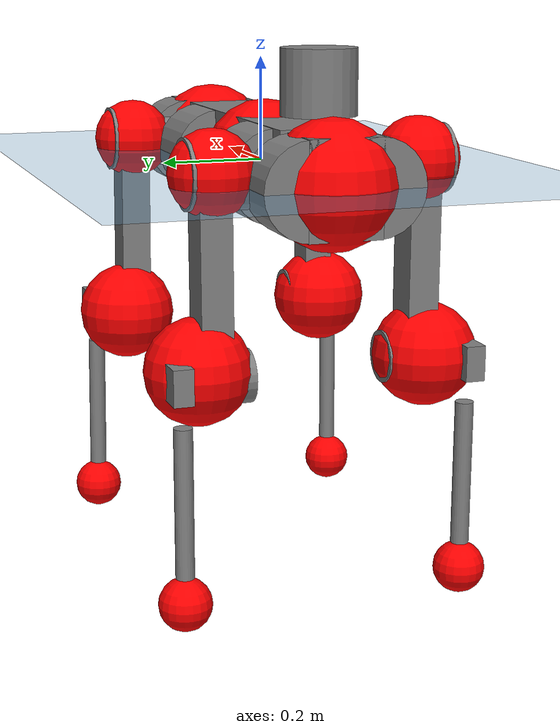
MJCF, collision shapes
<mujoco model="anymal_c">
  <compiler angle="radian" assetdir="assets" balanceinertia="true" inertiafromgeom="false"/>

  <option timestep="0.005" density="1.2" viscosity="2e-05"/>

  <size nkey="1"/>

  <visual>
    <quality shadowsize="8192"/>
    <map shadowclip="0.5"/>
  </visual>

  <default>
    <default class="/">
      <material specular="0" shininess="0.25"/>
      <geom contype="0" conaffinity="0" group="1" solref="-1000 -80"/>
      <site size="0.01 0.005 0.005" group="5"/>
      <general forcelimited="true" forcerange="-80 80" biastype="affine" gainprm="80" biasprm="0 -80 -2"/>
      <default class="anymal_c">
        <joint armature="0.01" damping="0.01" frictionloss="0.1"/>
        <default class="visual">
          <geom type="mesh" group="2"/>
          <default class="visual_zflip"/>
        </default>
        <default class="collision">
          <geom type="cylinder" group="3"/>
          <default class="foot">
            <geom size="0.03 0 0" type="sphere" condim="6" priority="1" friction="0.8 0.02 0.01" solimp="0.015 1 0.03"/>
          </default>
        </default>
      </default>
      <default class="reward_collision_sphere">
        <geom group="5" rgba="1 0 0 1"/>
      </default>
    </default>
  </default>

  <asset>
    <texture type="skybox" colorspace="auto" name="//unnamed_texture_0" builtin="gradient" rgb1="0.95 0.95 0.95" rgb2="0.95 0.95 0.95" width="100" height="600"/>
    <texture type="2d" colorspace="auto" name="texplane" builtin="checker" rgb1="0.345 0.575 0.748" rgb2="0.345 0.575 0.748" markrgb="1 1 1" width="512" height="512"/>
    <texture type="2d" colorspace="linear" name="base" file="base.png"/>
    <texture type="2d" colorspace="linear" name="top_shell" file="top_shell.png"/>
    <texture type="2d" colorspace="linear" name="bottom_shell" file="bottom_shell.png"/>
    <texture type="2d" colorspace="linear" name="remote" file="remote.png"/>
    <texture type="2d" colorspace="linear" name="hatch" file="hatch.png"/>
    <texture type="2d" colorspace="linear" name="handle" file="handle.png"/>
    <texture type="2d" colorspace="linear" name="face" file="face.png"/>
    <texture type="2d" colorspace="linear" name="battery" file="battery.png"/>
    <texture type="2d" colorspace="linear" name="lidar_cage" file="lidar_cage.png"/>
    <texture type="2d" colorspace="linear" name="depth_camera" file="depth_camera.png"/>
    <texture type="2d" colorspace="linear" name="wide_angle_camera" file="wide_angle_camera.png"/>
    <texture type="2d" colorspace="linear" name="lidar" file="lidar.png"/>
    <texture type="2d" colorspace="linear" name="drive" file="drive.png"/>
    <texture type="2d" colorspace="linear" name="hip_l" file="hip_l.png"/>
    <texture type="2d" colorspace="linear" name="shank_l" file="shank_l.png"/>
    <texture type="2d" colorspace="linear" name="foot" file="foot.png"/>
    <texture type="2d" colorspace="linear" name="thigh" file="thigh.png"/>
    <texture type="2d" colorspace="linear" name="shank_r" file="shank_r.png"/>
    <texture type="2d" colorspace="linear" name="hip_r" file="hip_r.png"/>
    <material name="MatPlane" class="/" texture="texplane" texuniform="true" texrepeat="2 2" specular="0.9" shininess="0.5"/>
    <material name="black_plastic" class="/" rgba="0.007 0.007 0.007 1"/>
    <material name="green" class="/" rgba="0.052 0.178 0.033 1"/>
    <material name="red" class="/" rgba="0.178 0.006 0.005 1"/>
    <material name="yellow" class="/" rgba="0.178 0.119 0.006 1"/>
    <material name="lwl" class="/" rgba="0.8 0.8 0.8 1"/>
    <material name="base" class="/" texture="base"/>
    <material name="top_shell" class="/" texture="top_shell"/>
    <material name="bottom_shell" class="/" texture="bottom_shell"/>
    <material name="hip_l" class="/" texture="hip_l"/>
    <material name="thigh" class="/" texture="thigh"/>
    <material name="shank_l" class="/" texture="shank_l"/>
    <material name="foot" class="/" texture="foot"/>
    <material name="hip_r" class="/" texture="hip_r"/>
    <material name="shank" class="/" texture="shank_r"/>
    <material name="hatch" class="/" texture="hatch"/>
    <material name="remote" class="/" texture="remote"/>
    <material name="handle" class="/" texture="handle"/>
    <material name="face" class="/" texture="face"/>
    <material name="depth_camera" class="/" texture="depth_camera"/>
    <material name="wide_angle_camera" class="/" texture="wide_angle_camera"/>
    <material name="battery" class="/" texture="battery"/>
    <material name="lidar_cage" class="/" texture="lidar_cage"/>
    <material name="lidar" class="/" texture="lidar"/>
    <material name="drive" class="/" texture="drive"/>
    <mesh name="base_0" class="/" file="base_0.obj"/>
    <mesh name="base_1" class="/" file="base_1.obj"/>
    <mesh name="base_2" class="/" file="base_2.obj"/>
    <mesh name="base_3" class="/" file="base_3.obj"/>
    <mesh name="base_4" class="/" file="base_4.obj"/>
    <mesh name="base_5" class="/" file="base_5.obj"/>
    <mesh name="top_shell" class="/" file="top_shell.obj"/>
    <mesh name="bottom_shell" class="/" file="bottom_shell.obj"/>
    <mesh name="remote" class="/" file="remote.obj"/>
    <mesh name="handle" class="/" file="handle.obj"/>
    <mesh name="face" class="/" file="face.obj"/>
    <mesh name="wide_angle_camera" class="/" file="wide_angle_camera.obj"/>
    <mesh name="depth_camera" class="/" file="depth_camera.obj"/>
    <mesh name="battery" class="/" file="battery.obj"/>
    <mesh name="lidar_cage" class="/" file="lidar_cage.obj"/>
    <mesh name="lidar" class="/" file="lidar.obj"/>
    <mesh name="drive" class="/" file="drive.obj"/>
    <mesh name="hip_l" class="/" file="hip_l.obj"/>
    <mesh name="thigh" class="/" file="thigh.obj"/>
    <mesh name="shank_l" class="/" file="shank_l.obj"/>
    <mesh name="foot" class="/" file="foot.obj"/>
    <mesh name="hip_r" class="/" file="hip_r.obj"/>
    <mesh name="hatch" class="/" file="hatch.obj"/>
    <mesh name="shank_r" class="/" file="shank_r.obj"/>
  </asset>

  <worldbody>
    <geom name="floor" class="/" size="100 100 0.125" type="plane" group="0" material="MatPlane"/>
    <light name="toplight_shadow" class="/" pos="0 0 5" dir="0.0990148 0.0990148 -0.990148" type="directional" ambient="0.04 0.04 0.04" diffuse="0.55 0.55 0.55" specular="0.12 0.12 0.12"/>
    <light name="toplight_fill" class="/" pos="0 0 5" dir="0.0990148 0.0990148 -0.990148" type="directional" castshadow="false" ambient="0.04 0.04 0.04" diffuse="0.3 0.3 0.3" specular="0.08 0.08 0.08"/>
    <body name="trunk" childclass="anymal_c" pos="-0.0115934 -0.00488509 0.000128851" quat="0.999999 -0.000504479 6.15624e-05 -0.00132295">
      <inertial pos="0.00171591 -6.71268e-06 0.0621442" quat="0.512829 0.474077 0.495646 0.516327" mass="19.0971" diaginertia="0.168641 0.244368 0.799484"/>
      <joint name="//unnamed_joint_0" type="free" armature="0" damping="0" frictionloss="0"/>
      <geom name="//unnamed_geom_1" class="visual" material="green" mesh="base_0"/>
      <geom name="//unnamed_geom_2" class="visual" material="yellow" mesh="base_1"/>
      <geom name="//unnamed_geom_3" class="visual" material="red" mesh="base_2"/>
      <geom name="//unnamed_geom_4" class="visual" material="black_plastic" mesh="base_3"/>
      <geom name="//unnamed_geom_5" class="visual" material="lwl" mesh="base_4"/>
      <geom name="//unnamed_geom_6" class="visual" material="base" mesh="base_5"/>
      <geom name="trunk_1" class="collision" size="0.288971 0.0697516 0.0896807" type="box"/>
      <geom name="trunk_2" class="collision" size="0.0896807 0.0722428" pos="0.176872 0.0609415 0" quat="0.707107 0 0.707107 0"/>
      <geom name="trunk_3" class="collision" size="0.0896807 0.0722428" pos="-0.176872 0.0609415 0" quat="0.707107 0 0.707107 0"/>
      <geom name="trunk_4" class="collision" size="0.0896807 0.0722428" pos="0.176872 -0.0609415 0" quat="0.707107 0 0.707107 0"/>
      <geom name="trunk_5" class="collision" size="0.0896807 0.0722428" pos="-0.176872 -0.0609415 0" quat="0.707107 0 0.707107 0"/>
      <geom name="//unnamed_geom_12" class="visual" material="top_shell" mesh="top_shell"/>
      <geom name="//unnamed_geom_13" class="visual" material="bottom_shell" mesh="bottom_shell"/>
      <geom name="//unnamed_geom_14" class="visual" material="remote" mesh="remote"/>
      <geom name="//unnamed_geom_15" class="visual" material="handle" mesh="handle"/>
      <geom name="//unnamed_geom_16" class="visual" pos="0.337073 0 0" quat="1 0 0 0" material="face" mesh="face"/>
      <geom name="trunk_6" class="collision" size="0.0548048 0.0697516 0.0896807" pos="0.381799 0 0" type="box"/>
      <geom name="//unnamed_geom_18" class="collision" size="0.0896807 0.0548048" pos="0.381799 0.0609415 0" quat="0.707107 0 0.707107 0"/>
      <geom name="//unnamed_geom_19" class="collision" size="0.0896807 0.0548048" pos="0.381799 -0.0609415 0" quat="0.707107 0 0.707107 0"/>
      <geom name="//unnamed_geom_20" class="visual" pos="0.375436 0 -0.0418642" quat="0.965926 0 0.258819 0" material="depth_camera" mesh="depth_camera"/>
      <geom name="//unnamed_geom_21" class="visual" pos="0.417173 0 0.0195442" material="wide_angle_camera" mesh="wide_angle_camera"/>
      <geom name="//unnamed_geom_22" class="visual_zflip" pos="-0.337073 0 0" quat="0 0 0 1" material="face" mesh="face"/>
      <geom name="trunk_7" class="collision" size="0.0548048 0.0697516 0.0896807" pos="-0.381799 0 0" quat="0 0 0 1" type="box"/>
      <geom name="//unnamed_geom_24" class="collision" size="0.0896807 0.0548048" pos="-0.381799 -0.0609415 0" quat="0 -0.707107 0 0.707107"/>
      <geom name="//unnamed_geom_25" class="collision" size="0.0896807 0.0548048" pos="-0.381799 0.0609415 0" quat="0 -0.707107 0 0.707107"/>
      <geom name="//unnamed_geom_26" class="visual" pos="-0.375436 0 -0.0418642" quat="0 -0.258819 0 0.965926" material="depth_camera" mesh="depth_camera"/>
      <geom name="//unnamed_geom_27" class="visual_zflip" pos="-0.417173 0 0.0195442" quat="0 0 0 1" material="wide_angle_camera" mesh="wide_angle_camera"/>
      <geom name="//unnamed_geom_28" class="visual" material="battery" mesh="battery"/>
      <geom name="//unnamed_geom_29" class="visual" pos="0 0.0673391 0.0341846" quat="0.683013 -0.183013 0.183013 0.683013" material="depth_camera" mesh="depth_camera"/>
      <geom name="//unnamed_geom_30" class="visual" pos="0 -0.0673391 0.0341846" quat="0.683013 0.183013 0.183013 -0.683013" material="depth_camera" mesh="depth_camera"/>
      <geom name="//unnamed_geom_31" class="visual" pos="-0.296006 0 0.0959586" quat="1 0 0 0" material="lidar_cage" mesh="lidar_cage"/>
      <geom name="trunk_8" class="collision" size="0.0697516 0.0597871" pos="-0.296006 0 0.174292"/>
      <geom name="//unnamed_geom_33" class="visual" pos="-0.296006 2.25472e-05 0.18565" quat="0.707107 0 0 -0.707107" material="lidar" mesh="lidar"/>
      <geom name="//unnamed_geom_34" class="visual" pos="0.24388 0.0906962 -7.5032e-09" quat="0.258819 0.965926 0 0" material="drive" mesh="drive"/>
      <geom name="//unnamed_geom_35" class="visual" pos="0.24388 -0.0906962 7.5032e-09" quat="0.258819 -0.965926 0 0" material="drive" mesh="drive"/>
      <geom name="//unnamed_geom_36" class="visual" pos="-0.24388 0.0906962 7.5032e-09" quat="0 0 0.965926 -0.258819" material="drive" mesh="drive"/>
      <geom name="//unnamed_geom_37" class="visual" pos="-0.24388 -0.0906962 -7.5032e-09" quat="0 0 -0.965926 -0.258819" material="drive" mesh="drive"/>
      <geom name="//unnamed_geom_38" class="visual" pos="0.0943315 0 0.0953058" quat="1 0 0 0" material="hatch" mesh="hatch"/>
      <geom name="//unnamed_geom_39" class="reward_collision_sphere" size="0.119574"/>
      <geom name="//unnamed_geom_40" class="reward_collision_sphere" size="0.119574" pos="0.365941 0 0"/>
      <geom name="//unnamed_geom_41" class="reward_collision_sphere" size="0.119574" pos="-0.365941 0 0"/>
      <site name="imu" pos="0.185855 0.0134459 0.125933" size="0.00996452"/>
      <camera name="track" pos="0 -1.74119 0" quat="0.707107 0.707107 0 0" mode="trackcom"/>
      <camera name="ego_camera" pos="0.365941 0 -0.0522224" quat="-0.5 -0.5 0.5 0.5"/>
      <body name="LF_HIP" pos="0.2441 0.0930711 0.00724067" quat="0.255972 0.966674 -0.000762687 -0.00439665">
        <inertial pos="0.0586062 -0.00821301 -0.0119117" quat="-0.133244 0.707281 -0.137593 0.680491" mass="2.81621" diaginertia="0.00212877 0.00271817 0.0125479"/>
        <joint name="LF_HAA" pos="0 0 0" axis="0.997385 -0.0721871 -0.00357988" stiffness="0.0585171" range="-0.716103 0.482457" armature="0.0160848" damping="0" frictionloss="0.0690794"/>
        <geom name="//unnamed_geom_42" class="visual" pos="0 -0.00044138 7.24962e-05" quat="0.258819 -0.965926 0 0" material="hip_l" mesh="hip_l"/>
        <geom name="//unnamed_geom_43" class="visual" pos="0.0487109 -0.0599337 -0.03782" quat="0.183013 -0.683013 0.683013 0.183013" material="drive" mesh="drive"/>
        <geom name="//unnamed_geom_44" class="collision" size="0.0498226 0.0697516" pos="0.0487109 -0.0104121 -0.00901489" quat="-0.353553 -0.612372 0.612372 -0.353553"/>
        <body name="LF_THIGH" pos="0.0567253 -0.0640183 -0.0478909" quat="0.184213 -0.682709 0.682368 0.185332">
          <inertial pos="0.025147 0.000330915 -0.307148" quat="0.995789 -0.017412 -0.0636362 0.0636472" mass="3.21057" diaginertia="0.0114324 0.0158097 0.016557"/>
          <joint name="LF_HFE" pos="0 0 0" axis="0.999445 -0.0332575 -0.00172335" stiffness="0.0385083" range="-3.24684 3.14384" armature="0.00422318" damping="0.0399644" frictionloss="0.135447"/>
          <geom name="//unnamed_geom_45" class="visual" pos="-0.00114185 -1.79928e-06 0" quat="0.707107 0 0 -0.707107" material="thigh" mesh="thigh"/>
          <geom name="//unnamed_geom_46" class="collision" size="0.0647694 0.0398581" pos="0.0325281 0 0" quat="0.5 0.5 -0.5 -0.5"/>
          <geom name="//unnamed_geom_47" class="collision" size="0.0373669 0.0298936 0.140813" pos="0.0243961 0 -0.184494" quat="0.707107 0 0 -0.707107" type="box"/>
          <geom name="//unnamed_geom_48" class="visual" pos="0.0815643 0 -0.372084" quat="1 0 0 0" material="drive" mesh="drive"/>
          <geom name="//unnamed_geom_49" class="collision" size="0.0498226 0.0697516" pos="0.02464 0 -0.372084" quat="0.707107 0 0.707107 0"/>
          <geom name="//unnamed_geom_50" class="reward_collision_sphere" size="0.0797161" pos="0.0203301 0 0"/>
          <body name="LF_SHANK" pos="0.0826075 0.0139988 -0.369109" quat="0.99999 -0.00292939 -0.00139261 -0.0030667">
            <inertial pos="-0.00155913 -0.0506355 -0.10637" quat="0.986127 -0.164146 -0.0239543 0.00603939" mass="0.47743" diaginertia="0.0036638 0.00425159 0.00436099"/>
            <joint name="LF_KFE" pos="0 0 0" axis="0.99977 0.0202998 -0.00691134" range="-3.11823 3.17063" armature="0.0100734" damping="0.0487439" frictionloss="0.0969144"/>
            <geom name="//unnamed_geom_51" class="visual" pos="-0.000372331 -0.00198529 0" quat="0.707107 0 0 -0.707107" material="shank_l" mesh="shank_l"/>
            <geom name="LF_kfe_act" class="collision" size="0.0597871 0.019929" pos="0.0162641 0 0" quat="0.5 0.5 -0.5 -0.5"/>
            <geom name="//unnamed_geom_53" class="collision" size="0.057295 0.0336302 0.0189326" pos="0.0162641 -0.0500583 0" quat="0.5 0.5 -0.5 -0.5" type="box"/>
            <geom name="//unnamed_geom_54" class="visual" pos="0.0106124 -0.0772085 -0.44124" quat="0.382683 0 0 -0.92388" material="foot" mesh="foot"/>
            <geom name="LF_calf" class="collision" size="0.0174379 0.140751" pos="0.0106123 -0.0765687 -0.22062" quat="0.707107 0 0 -0.707107"/>
            <geom name="LF_foot" class="foot" size="0.0199682" pos="0.0106123 -0.0765687 -0.411865" quat="0.707107 0 0 -0.707107"/>
            <geom name="//unnamed_geom_57" class="reward_collision_sphere" size="0.0996452" pos="-0.0406601 0 0"/>
            <geom name="//unnamed_geom_58" class="reward_collision_sphere" size="0.0498226" pos="0.0106123 -0.0765687 -0.411865"/>
            <site name="LF_foot" class="foot" pos="0.0106123 -0.0765687 -0.411865" quat="0.707107 0 0 -0.707107" size="0.00996452"/>
          </body>
        </body>
      </body>
      <body name="RF_HIP" pos="0.257623 -0.103807 0.0103429" quat="0.258801 -0.965931 -0.000164204 0.000179218">
        <inertial pos="0.0328071 0.0100681 0.00129031" quat="0.134939 0.674427 0.0913105 0.72014" mass="2.27138" diaginertia="0.00174711 0.00227871 0.0104047"/>
        <joint name="RF_HAA" pos="0 0 0" axis="0.998387 -0.0209642 0.0527675" range="-0.243182 0.698726" armature="0.0109861" damping="0.00620386" frictionloss="0.152675"/>
        <geom name="//unnamed_geom_59" class="visual" pos="0 0.000441376 7.2496e-05" quat="0.258819 0.965926 0 0" material="hip_r" mesh="hip_r"/>
        <geom name="//unnamed_geom_60" class="visual" pos="0.0487109 0.0599337 -0.03782" quat="0.183013 0.683013 0.683013 -0.183013" material="drive" mesh="drive"/>
        <geom name="//unnamed_geom_61" class="collision" size="0.0498226 0.0697516" pos="0.0487109 0.0104121 -0.00901489" quat="-0.353553 0.612372 0.612372 0.353553"/>
        <body name="RF_THIGH" pos="0.048389 0.0668032 -0.0620454" quat="0.182207 0.682957 0.683581 -0.181898">
          <inertial pos="0.0315065 -0.0144774 -0.324016" quat="0.993313 -0.00362797 -0.0765498 0.0863463" mass="2.89619" diaginertia="0.0105676 0.0138997 0.0150636"/>
          <joint name="RF_HFE" pos="0 0 0" axis="0.999466 0.00308523 0.0325431" range="-3.12015 3.01385" armature="0.0118299" damping="0.050721" frictionloss="0.0892305"/>
          <geom name="//unnamed_geom_62" class="visual" pos="-0.00114185 -1.79928e-06 0" quat="0.707107 0 0 -0.707107" material="thigh" mesh="thigh"/>
          <geom name="//unnamed_geom_63" class="collision" size="0.0647694 0.0398581" pos="0.0325281 0 0" quat="0.5 0.5 0.5 0.5"/>
          <geom name="//unnamed_geom_64" class="collision" size="0.0373669 0.0298936 0.140813" pos="0.0243961 0 -0.184494" quat="0.707107 0 0 0.707107" type="box"/>
          <geom name="//unnamed_geom_65" class="visual" pos="0.0815643 0 -0.372084" quat="1 0 0 0" material="drive" mesh="drive"/>
          <geom name="//unnamed_geom_66" class="collision" size="0.0498226 0.0697516" pos="0.02464 0 -0.372084" quat="0.707107 0 0.707107 0"/>
          <geom name="//unnamed_geom_67" class="reward_collision_sphere" size="0.0797161" pos="0.0203301 0 0"/>
          <body name="RF_SHANK" pos="0.0786885 -0.00351421 -0.38291" quat="0.999977 -0.00646273 -0.000223941 -0.00185443">
            <inertial pos="-0.0101963 0.0614775 -0.115929" quat="0.993054 0.114791 -0.0103344 0.0236553" mass="0.67213" diaginertia="0.00338584 0.00405777 0.00359462"/>
            <joint name="RF_KFE" pos="0 0 0" axis="0.999834 -0.00165515 -0.0181453" range="-2.88735 3.1403" armature="0.0092715" damping="0" frictionloss="0.0430318"/>
            <geom name="//unnamed_geom_68" class="visual" pos="-0.000372329 0.00198528 0" quat="0.707107 0 0 0.707107" material="shank" mesh="shank_r"/>
            <geom name="RF_kfe_act" class="collision" size="0.0597871 0.019929" pos="0.0162641 0 0" quat="0.5 0.5 0.5 0.5"/>
            <geom name="//unnamed_geom_70" class="collision" size="0.057295 0.0336302 0.0189326" pos="0.0162641 0.0500583 0" quat="0.5 0.5 0.5 0.5" type="box"/>
            <geom name="//unnamed_geom_71" class="visual" pos="0.0106122 0.0772085 -0.44124" quat="0.382683 0 0 0.92388" material="foot" mesh="foot"/>
            <geom name="RF_calf" class="collision" size="0.0174379 0.140751" pos="0.0106123 0.0765687 -0.22062" quat="0.707107 0 0 0.707107"/>
            <geom name="RF_foot" class="foot" size="0.032101" pos="0.0106123 0.0765687 -0.411865" quat="0.707107 0 0 0.707107"/>
            <geom name="//unnamed_geom_74" class="reward_collision_sphere" size="0.0996452" pos="-0.0406601 0 0"/>
            <geom name="//unnamed_geom_75" class="reward_collision_sphere" size="0.0498226" pos="0.0106123 0.0765687 -0.411865"/>
            <site name="RF_foot" class="foot" pos="0.0106123 0.0765687 -0.411865" quat="0.707107 0 0 0.707107" size="0.00996452"/>
          </body>
        </body>
      </body>
      <body name="LH_HIP" pos="-0.25877 0.101843 0.00267719" quat="0.000653232 -0.000515615 0.965515 -0.260348">
        <inertial pos="0.033423 0.0276194 -0.00948239" quat="0.102653 0.652531 0.15549 0.734499" mass="2.91321" diaginertia="0.00213187 0.00245169 0.0139607"/>
        <joint name="LH_HAA" pos="0 0 0" axis="0.999612 0.0275924 -0.00380206" range="-0.664052 0.624057" armature="0.00973586" damping="0.00749865" frictionloss="0.121007"/>
        <geom name="//unnamed_geom_76" class="visual" pos="0 0.000441376 7.2496e-05" quat="-0.258819 -0.965926 0 0" material="hip_r" mesh="hip_r"/>
        <geom name="//unnamed_geom_77" class="visual" pos="0.0487109 0.0599337 -0.03782" quat="0.183013 0.683013 0.683013 -0.183013" material="drive" mesh="drive"/>
        <geom name="//unnamed_geom_78" class="collision" size="0.0498226 0.0697516" pos="0.0487109 0.0104121 -0.00901489" quat="-0.353553 0.612372 0.612372 0.353553"/>
        <body name="LH_THIGH" pos="0.0418151 0.0582699 -0.0552824" quat="0.182573 0.684301 0.682299 -0.181297">
          <inertial pos="0.0226585 -0.0130362 -0.320506" quat="0.990583 0.0128765 -0.119455 0.0656581" mass="2.61364" diaginertia="0.0105505 0.0132718 0.0165369"/>
          <joint name="LH_HFE" pos="0 0 0" axis="0.998201 -0.0588622 -0.0114071" stiffness="0.0452138" range="-3.31366 2.98216" armature="0.00408852" damping="0" frictionloss="0.0461607"/>
          <geom name="//unnamed_geom_79" class="visual" pos="-0.00114185 -1.79928e-06 0" quat="0.707107 0 0 -0.707107" material="thigh" mesh="thigh"/>
          <geom name="//unnamed_geom_80" class="collision" size="0.0647694 0.0398581" pos="0.0325281 0 0" quat="0.5 0.5 -0.5 -0.5"/>
          <geom name="//unnamed_geom_81" class="collision" size="0.0373669 0.0298936 0.140813" pos="0.0243961 0 -0.184494" quat="0.707107 0 0 -0.707107" type="box"/>
          <geom name="//unnamed_geom_82" class="visual" pos="0.0815643 0 -0.372084" quat="1 0 0 0" material="drive" mesh="drive"/>
          <geom name="//unnamed_geom_83" class="collision" size="0.0498226 0.0697516" pos="0.02464 0 -0.372084" quat="0.707107 0 0.707107 0"/>
          <geom name="//unnamed_geom_84" class="reward_collision_sphere" size="0.0797161" pos="0.0203301 0 0"/>
          <body name="LH_SHANK" pos="0.089333 -0.0104019 -0.35828" quat="0.999976 0.00562205 -0.00411014 -0.000295999">
            <inertial pos="0.00384435 0.0535269 -0.120063" quat="0.994361 0.101472 -0.0285686 0.0115578" mass="0.679989" diaginertia="0.00363494 0.00502718 0.00435271"/>
            <joint name="LH_KFE" pos="0 0 0" axis="0.9997 0.0147717 0.0195532" stiffness="0.0289508" range="-3.19733 3.29948" armature="0.00860518" damping="0.0186877" frictionloss="0.14873"/>
            <geom name="//unnamed_geom_85" class="visual" pos="-0.000372329 0.00198528 0" quat="-0.707107 0 0 -0.707107" material="shank" mesh="shank_r"/>
            <geom name="LH_kfe_act" class="collision" size="0.0597871 0.019929" pos="0.0162641 0 0" quat="0.5 0.5 -0.5 -0.5"/>
            <geom name="//unnamed_geom_87" class="collision" size="0.057295 0.0336302 0.0189326" pos="0.0162641 0.0500583 0" quat="0.5 0.5 -0.5 -0.5" type="box"/>
            <geom name="//unnamed_geom_88" class="visual" pos="0.0106122 0.0772085 -0.44124" quat="-0.382683 0 0 -0.92388" material="foot" mesh="foot"/>
            <geom name="LH_calf" class="collision" size="0.0174379 0.140751" pos="0.0106123 0.0765687 -0.22062" quat="0.707107 0 0 -0.707107"/>
            <geom name="LH_foot" class="foot" size="0.0414389" pos="0.0106123 0.0765687 -0.411865" quat="0.707107 0 0 -0.707107"/>
            <geom name="//unnamed_geom_91" class="reward_collision_sphere" size="0.0996452" pos="-0.0406601 0 0"/>
            <geom name="//unnamed_geom_92" class="reward_collision_sphere" size="0.0498226" pos="0.0106123 0.0765687 -0.411865"/>
            <site name="LH_foot" class="foot" pos="0.0106123 0.0765687 -0.411865" quat="0.707107 0 0 -0.707107" size="0.00996452"/>
          </body>
        </body>
      </body>
      <body name="RH_HIP" pos="-0.231089 -0.0959094 0.000756974" quat="-0.00103716 0.00121502 -0.965538 -0.260259">
        <inertial pos="0.0369454 -0.019985 -0.00993186" quat="-0.0807925 0.68327 -0.129102 0.714106" mass="2.82931" diaginertia="0.00194085 0.00226153 0.0115352"/>
        <joint name="RH_HAA" pos="0 0 0" axis="0.997775 0.0664433 -0.0054595" stiffness="0.00783861" range="-0.705292 0.409965" armature="0.0125872" damping="0" frictionloss="0.104058"/>
        <geom name="//unnamed_geom_93" class="visual" pos="0 -0.00044138 7.24962e-05" quat="-0.258819 0.965926 0 0" material="hip_l" mesh="hip_l"/>
        <geom name="//unnamed_geom_94" class="visual" pos="0.0487109 -0.0599337 -0.03782" quat="-0.183013 0.683013 -0.683013 -0.183013" material="drive" mesh="drive"/>
        <geom name="//unnamed_geom_95" class="collision" size="0.0498226 0.0697516" pos="0.0487109 -0.0104121 -0.00901489" quat="0.353553 0.612372 -0.612372 0.353553"/>
        <body name="RH_THIGH" pos="0.0479399 -0.0602379 -0.0662675" quat="-0.184354 0.684158 -0.681757 -0.182067">
          <inertial pos="0.0220476 -0.000137549 -0.324451" quat="0.994259 -0.0628281 -0.0409563 0.0763143" mass="3.19099" diaginertia="0.0108471 0.0131613 0.0132286"/>
          <joint name="RH_HFE" pos="0 0 0" axis="0.99987 0.00724163 0.0144156" stiffness="0.0446332" range="-3.11924 3.0523" armature="0.00517222" damping="0.0606694" frictionloss="0.130896"/>
          <geom name="//unnamed_geom_96" class="visual" pos="-0.00114185 -1.79928e-06 0" quat="0.707107 0 0 -0.707107" material="thigh" mesh="thigh"/>
          <geom name="//unnamed_geom_97" class="collision" size="0.0647694 0.0398581" pos="0.0325281 0 0" quat="0.5 0.5 0.5 0.5"/>
          <geom name="//unnamed_geom_98" class="collision" size="0.0373669 0.0298936 0.140813" pos="0.0243961 0 -0.184494" quat="0.707107 0 0 0.707107" type="box"/>
          <geom name="//unnamed_geom_99" class="visual" pos="0.0815643 0 -0.372084" quat="1 0 0 0" material="drive" mesh="drive"/>
          <geom name="//unnamed_geom_100" class="collision" size="0.0498226 0.0697516" pos="0.02464 0 -0.372084" quat="0.707107 0 0.707107 0"/>
          <geom name="//unnamed_geom_101" class="reward_collision_sphere" size="0.0797161" pos="0.0203301 0 0"/>
          <body name="RH_SHANK" pos="0.0845234 -0.00111343 -0.371863" quat="1 -4.03724e-05 0.000282621 -8.20179e-05">
            <inertial pos="0.0158664 -0.0398184 -0.117964" quat="0.992931 -0.115981 -0.000710016 -0.0252351" mass="0.50753" diaginertia="0.00402125 0.00400982 0.0043377"/>
            <joint name="RH_KFE" pos="0 0 0" axis="0.999825 -0.0116595 0.0146524" stiffness="0.00739764" range="-3.05068 2.88629" armature="0.0103393" damping="0" frictionloss="0.0352188"/>
            <geom name="//unnamed_geom_102" class="visual" pos="-0.000372331 -0.00198529 0" quat="0.707107 0 0 -0.707107" material="shank_l" mesh="shank_l"/>
            <geom name="RH_kfe_act" class="collision" size="0.0597871 0.019929" pos="0.0162641 0 0" quat="0.5 0.5 0.5 0.5"/>
            <geom name="//unnamed_geom_104" class="collision" size="0.057295 0.0336302 0.0189326" pos="0.0162641 -0.0500583 0" quat="0.5 0.5 0.5 0.5" type="box"/>
            <geom name="//unnamed_geom_105" class="visual" pos="0.0106124 -0.0772085 -0.44124" quat="0.382683 0 0 -0.92388" material="foot" mesh="foot"/>
            <geom name="RH_calf" class="collision" size="0.0174379 0.140751" pos="0.0106123 -0.0765687 -0.22062" quat="0.707107 0 0 0.707107"/>
            <geom name="RH_foot" class="foot" size="0.0159884" pos="0.0106123 -0.0765687 -0.411865" quat="0.707107 0 0 0.707107"/>
            <geom name="//unnamed_geom_108" class="reward_collision_sphere" size="0.0996452" pos="-0.0406601 0 0"/>
            <geom name="//unnamed_geom_109" class="reward_collision_sphere" size="0.0498226" pos="0.0106123 -0.0765687 -0.411865"/>
            <site name="RH_foot" class="foot" pos="0.0106123 -0.0765687 -0.411865" quat="0.707107 0 0 0.707107" size="0.00996452"/>
          </body>
        </body>
      </body>
    </body>
  </worldbody>

  <contact>
    <pair class="/" geom1="floor" geom2="LF_foot" name="//unnamed_contact_0"/>
    <pair class="/" geom1="floor" geom2="RF_foot" name="//unnamed_contact_1"/>
    <pair class="/" geom1="floor" geom2="LH_foot" name="//unnamed_contact_2"/>
    <pair class="/" geom1="floor" geom2="RH_foot" name="//unnamed_contact_3"/>
  </contact>

  <actuator>
    <general name="LF_HAA" class="/" joint="LF_HAA" forcerange="-83.7406 83.7406" gainprm="76.59" biasprm="0 -76.59 -1.80543"/>
    <general name="LF_HFE" class="/" joint="LF_HFE" forcerange="-111.711 111.711" gainprm="76.59" biasprm="0 -76.59 -1.80543"/>
    <general name="LF_KFE" class="/" joint="LF_KFE" forcerange="-63.7597 63.7597" gainprm="76.59" biasprm="0 -76.59 -1.80543"/>
    <general name="RF_HAA" class="/" joint="RF_HAA" forcerange="-86.2394 86.2394" gainprm="76.59" biasprm="0 -76.59 -1.80543"/>
    <general name="RF_HFE" class="/" joint="RF_HFE" forcerange="-76.9373 76.9373" gainprm="76.59" biasprm="0 -76.59 -1.80543"/>
    <general name="RF_KFE" class="/" joint="RF_KFE" forcerange="-57.4851 57.4851" gainprm="76.59" biasprm="0 -76.59 -1.80543"/>
    <general name="LH_HAA" class="/" joint="LH_HAA" forcerange="-84.4912 84.4912" gainprm="76.59" biasprm="0 -76.59 -1.80543"/>
    <general name="LH_HFE" class="/" joint="LH_HFE" forcerange="-56.4415 56.4415" gainprm="76.59" biasprm="0 -76.59 -1.80543"/>
    <general name="LH_KFE" class="/" joint="LH_KFE" forcerange="-100.733 100.733" gainprm="76.59" biasprm="0 -76.59 -1.80543"/>
    <general name="RH_HAA" class="/" joint="RH_HAA" forcerange="-79.7587 79.7587" gainprm="76.59" biasprm="0 -76.59 -1.80543"/>
    <general name="RH_HFE" class="/" joint="RH_HFE" forcerange="-68.4958 68.4958" gainprm="76.59" biasprm="0 -76.59 -1.80543"/>
    <general name="RH_KFE" class="/" joint="RH_KFE" forcerange="-121.44 121.44" gainprm="76.59" biasprm="0 -76.59 -1.80543"/>
  </actuator>

  <sensor>
    <gyro site="imu" name="imu_angular_velocity"/>
    <velocimeter site="imu" name="imu_linear_velocity"/>
    <framelinvel objtype="site" objname="LF_foot" name="LF_foot_global_linear_velocity"/>
    <framelinvel objtype="site" objname="RF_foot" name="RF_foot_global_linear_velocity"/>
    <framelinvel objtype="site" objname="LH_foot" name="LH_foot_global_linear_velocity"/>
    <framelinvel objtype="site" objname="RH_foot" name="RH_foot_global_linear_velocity"/>
  </sensor>

  <keyframe>
    <key name="home" qpos="0 0 0.55 1 0 0 0 0 0.4 -0.8 0 -0.4 0.8 0 -0.4 0.8 0 0.4 -0.8"/>
  </keyframe>
</mujoco>
